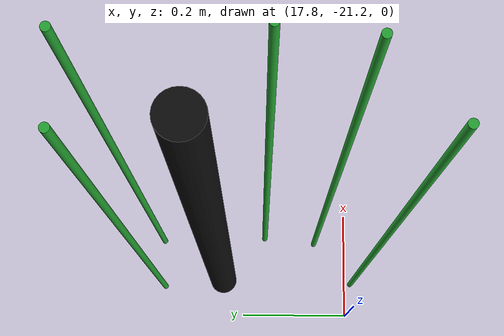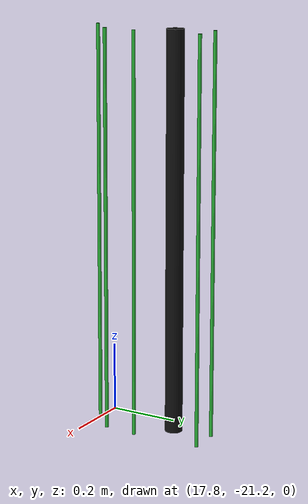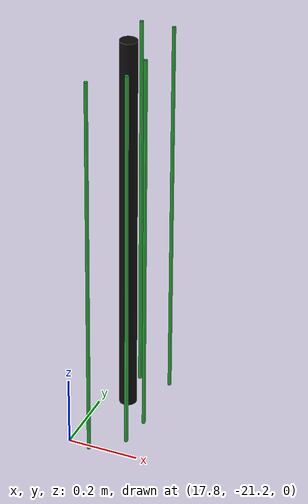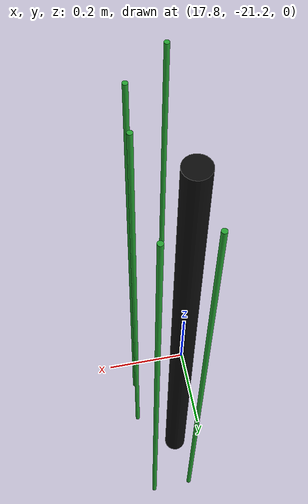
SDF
<sdf version="1.6">
 <world name="default">
  <model name="pole_30">
   <static>1</static>
   <pose>17.87 -20.96 0.575 0 -0 0</pose>
   <link name="link">
    <collision name="collision">
     <geometry><cylinder><length>1.15</length><radius>0.025</radius></cylinder></geometry>
    </collision>
    <visual name="visual">
     <geometry><cylinder><length>1.15</length><radius>0.025</radius></cylinder></geometry>
     <material>
      <script><uri>file://media/materials/scripts/gazebo.material</uri><name>Gazebo/Chrome</name></script>
      <shader type="vertex"><normal_map>__default__</normal_map></shader>
      <emissive>0.1 0.1 0.1 1</emissive>
      <specular>0.01 0.01 0.01 1</specular>
      <ambient>0.5 0.5 0.5 1</ambient>
      <diffuse>0.05 0.05 0.05 1</diffuse>
     </material>
    </visual>
   </link>
  </model>
  <model name="pole_27_clone_clone_204">
   <link name="link">
    <inertial>
     <mass>1</mass>
     <inertia><ixx>1</ixx><ixy>0</ixy><ixz>0</ixz><iyy>1</iyy><iyz>0</iyz><izz>1</izz></inertia>
    </inertial>
    <visual name="visual">
     <geometry><cylinder><length>1.15</length><radius>0.005</radius></cylinder></geometry>
     <material>
      <script><uri>file://media/materials/scripts/gazebo.material</uri><name>Gazebo/Green</name></script>
      <shader type="vertex"><normal_map>__default__</normal_map></shader>
      <emissive>0 0.1 0 1</emissive>
      <specular>0 0.01 0 1</specular>
      <ambient>0 0.5 0 1</ambient>
      <diffuse>0 0.05 0 1</diffuse>
     </material>
    </visual>
    <collision name="collision">
     <geometry><cylinder><radius>0.005</radius><length>1.15</length></cylinder></geometry>
     <surface>
      <friction>
       <ode><mu>1</mu><mu2>1</mu2><fdir1>0 0 0</fdir1><slip1>0</slip1><slip2>0</slip2></ode>
       <torsional>
        <coefficient>1</coefficient>
        <patch_radius>0</patch_radius>
        <surface_radius>0</surface_radius>
        <use_patch_radius>1</use_patch_radius>
        <ode><slip>0</slip></ode>
       </torsional>
      </friction>
      <bounce><restitution_coefficient>0</restitution_coefficient><threshold>1e+06</threshold></bounce>
      <contact>
       <collide_without_contact>0</collide_without_contact>
       <collide_without_contact_bitmask>1</collide_without_contact_bitmask>
       <collide_bitmask>1</collide_bitmask>
       <ode>
        <soft_cfm>0</soft_cfm>
        <soft_erp>0.2</soft_erp>
        <kp>1e+13</kp>
        <kd>1</kd>
        <max_vel>0.01</max_vel>
        <min_depth>0</min_depth>
       </ode>
       <bullet>
        <split_impulse>1</split_impulse>
        <split_impulse_penetration_threshold>-0.01</split_impulse_penetration_threshold>
        <soft_cfm>0</soft_cfm>
        <soft_erp>0.2</soft_erp>
        <kp>1e+13</kp>
        <kd>1</kd>
       </bullet>
      </contact>
     </surface>
    </collision>
   </link>
   <static>1</static>
   <pose>17.9544 -21.0415 0.575 0 -0 0</pose>
  </model>
  <model name="pole_27_clone_clone_206">
   <link name="link">
    <inertial>
     <mass>1</mass>
     <inertia><ixx>1</ixx><ixy>0</ixy><ixz>0</ixz><iyy>1</iyy><iyz>0</iyz><izz>1</izz></inertia>
    </inertial>
    <visual name="visual">
     <geometry><cylinder><length>1.15</length><radius>0.005</radius></cylinder></geometry>
     <material>
      <script><uri>file://media/materials/scripts/gazebo.material</uri><name>Gazebo/Green</name></script>
      <shader type="vertex"><normal_map>__default__</normal_map></shader>
      <emissive>0 0.1 0 1</emissive>
      <specular>0 0.01 0 1</specular>
      <ambient>0 0.5 0 1</ambient>
      <diffuse>0 0.05 0 1</diffuse>
     </material>
    </visual>
    <collision name="collision">
     <geometry><cylinder><radius>0.005</radius><length>1.15</length></cylinder></geometry>
     <surface>
      <friction>
       <ode><mu>1</mu><mu2>1</mu2><fdir1>0 0 0</fdir1><slip1>0</slip1><slip2>0</slip2></ode>
       <torsional>
        <coefficient>1</coefficient>
        <patch_radius>0</patch_radius>
        <surface_radius>0</surface_radius>
        <use_patch_radius>1</use_patch_radius>
        <ode><slip>0</slip></ode>
       </torsional>
      </friction>
      <bounce><restitution_coefficient>0</restitution_coefficient><threshold>1e+06</threshold></bounce>
      <contact>
       <collide_without_contact>0</collide_without_contact>
       <collide_without_contact_bitmask>1</collide_without_contact_bitmask>
       <collide_bitmask>1</collide_bitmask>
       <ode>
        <soft_cfm>0</soft_cfm>
        <soft_erp>0.2</soft_erp>
        <kp>1e+13</kp>
        <kd>1</kd>
        <max_vel>0.01</max_vel>
        <min_depth>0</min_depth>
       </ode>
       <bullet>
        <split_impulse>1</split_impulse>
        <split_impulse_penetration_threshold>-0.01</split_impulse_penetration_threshold>
        <soft_cfm>0</soft_cfm>
        <soft_erp>0.2</soft_erp>
        <kp>1e+13</kp>
        <kd>1</kd>
       </bullet>
      </contact>
     </surface>
    </collision>
   </link>
   <static>1</static>
   <pose>17.944 -21.1392 0.575 0 -0 0</pose>
  </model>
  <model name="pole_27_clone_clone_208">
   <link name="link">
    <inertial>
     <mass>1</mass>
     <inertia><ixx>1</ixx><ixy>0</ixy><ixz>0</ixz><iyy>1</iyy><iyz>0</iyz><izz>1</izz></inertia>
    </inertial>
    <visual name="visual">
     <geometry><cylinder><length>1.15</length><radius>0.005</radius></cylinder></geometry>
     <material>
      <script><uri>file://media/materials/scripts/gazebo.material</uri><name>Gazebo/Green</name></script>
      <shader type="vertex"><normal_map>__default__</normal_map></shader>
      <emissive>0 0.1 0 1</emissive>
      <specular>0 0.01 0 1</specular>
      <ambient>0 0.5 0 1</ambient>
      <diffuse>0 0.05 0 1</diffuse>
     </material>
    </visual>
    <collision name="collision">
     <geometry><cylinder><radius>0.005</radius><length>1.15</length></cylinder></geometry>
     <surface>
      <friction>
       <ode><mu>1</mu><mu2>1</mu2><fdir1>0 0 0</fdir1><slip1>0</slip1><slip2>0</slip2></ode>
       <torsional>
        <coefficient>1</coefficient>
        <patch_radius>0</patch_radius>
        <surface_radius>0</surface_radius>
        <use_patch_radius>1</use_patch_radius>
        <ode><slip>0</slip></ode>
       </torsional>
      </friction>
      <bounce><restitution_coefficient>0</restitution_coefficient><threshold>1e+06</threshold></bounce>
      <contact>
       <collide_without_contact>0</collide_without_contact>
       <collide_without_contact_bitmask>1</collide_without_contact_bitmask>
       <collide_bitmask>1</collide_bitmask>
       <ode>
        <soft_cfm>0</soft_cfm>
        <soft_erp>0.2</soft_erp>
        <kp>1e+13</kp>
        <kd>1</kd>
        <max_vel>0.01</max_vel>
        <min_depth>0</min_depth>
       </ode>
       <bullet>
        <split_impulse>1</split_impulse>
        <split_impulse_penetration_threshold>-0.01</split_impulse_penetration_threshold>
        <soft_cfm>0</soft_cfm>
        <soft_erp>0.2</soft_erp>
        <kp>1e+13</kp>
        <kd>1</kd>
       </bullet>
      </contact>
     </surface>
    </collision>
   </link>
   <static>1</static>
   <pose>17.9482 -20.8418 0.575 0 -0 0</pose>
  </model>
  <model name="pole_27_clone_clone_210">
   <link name="link">
    <inertial>
     <mass>1</mass>
     <inertia><ixx>1</ixx><ixy>0</ixy><ixz>0</ixz><iyy>1</iyy><iyz>0</iyz><izz>1</izz></inertia>
    </inertial>
    <visual name="visual">
     <geometry><cylinder><length>1.15</length><radius>0.005</radius></cylinder></geometry>
     <material>
      <script><uri>file://media/materials/scripts/gazebo.material</uri><name>Gazebo/Green</name></script>
      <shader type="vertex"><normal_map>__default__</normal_map></shader>
      <emissive>0 0.1 0 1</emissive>
      <specular>0 0.01 0 1</specular>
      <ambient>0 0.5 0 1</ambient>
      <diffuse>0 0.05 0 1</diffuse>
     </material>
    </visual>
    <collision name="collision">
     <geometry><cylinder><radius>0.005</radius><length>1.15</length></cylinder></geometry>
     <surface>
      <friction>
       <ode><mu>1</mu><mu2>1</mu2><fdir1>0 0 0</fdir1><slip1>0</slip1><slip2>0</slip2></ode>
       <torsional>
        <coefficient>1</coefficient>
        <patch_radius>0</patch_radius>
        <surface_radius>0</surface_radius>
        <use_patch_radius>1</use_patch_radius>
        <ode><slip>0</slip></ode>
       </torsional>
      </friction>
      <bounce><restitution_coefficient>0</restitution_coefficient><threshold>1e+06</threshold></bounce>
      <contact>
       <collide_without_contact>0</collide_without_contact>
       <collide_without_contact_bitmask>1</collide_without_contact_bitmask>
       <collide_bitmask>1</collide_bitmask>
       <ode>
        <soft_cfm>0</soft_cfm>
        <soft_erp>0.2</soft_erp>
        <kp>1e+13</kp>
        <kd>1</kd>
        <max_vel>0.01</max_vel>
        <min_depth>0</min_depth>
       </ode>
       <bullet>
        <split_impulse>1</split_impulse>
        <split_impulse_penetration_threshold>-0.01</split_impulse_penetration_threshold>
        <soft_cfm>0</soft_cfm>
        <soft_erp>0.2</soft_erp>
        <kp>1e+13</kp>
        <kd>1</kd>
       </bullet>
      </contact>
     </surface>
    </collision>
   </link>
   <static>1</static>
   <pose>17.8572 -20.8451 0.575 0 -0 0</pose>
  </model>
  <model name="pole_27_clone_clone_211">
   <link name="link">
    <inertial>
     <mass>1</mass>
     <inertia><ixx>1</ixx><ixy>0</ixy><ixz>0</ixz><iyy>1</iyy><iyz>0</iyz><izz>1</izz></inertia>
    </inertial>
    <visual name="visual">
     <geometry><cylinder><length>1.15</length><radius>0.005</radius></cylinder></geometry>
     <material>
      <script><uri>file://media/materials/scripts/gazebo.material</uri><name>Gazebo/Green</name></script>
      <shader type="vertex"><normal_map>__default__</normal_map></shader>
      <emissive>0 0.1 0 1</emissive>
      <specular>0 0.01 0 1</specular>
      <ambient>0 0.5 0 1</ambient>
      <diffuse>0 0.05 0 1</diffuse>
     </material>
    </visual>
    <collision name="collision">
     <geometry><cylinder><radius>0.005</radius><length>1.15</length></cylinder></geometry>
     <surface>
      <friction>
       <ode><mu>1</mu><mu2>1</mu2><fdir1>0 0 0</fdir1><slip1>0</slip1><slip2>0</slip2></ode>
       <torsional>
        <coefficient>1</coefficient>
        <patch_radius>0</patch_radius>
        <surface_radius>0</surface_radius>
        <use_patch_radius>1</use_patch_radius>
        <ode><slip>0</slip></ode>
       </torsional>
      </friction>
      <bounce><restitution_coefficient>0</restitution_coefficient><threshold>1e+06</threshold></bounce>
      <contact>
       <collide_without_contact>0</collide_without_contact>
       <collide_without_contact_bitmask>1</collide_without_contact_bitmask>
       <collide_bitmask>1</collide_bitmask>
       <ode>
        <soft_cfm>0</soft_cfm>
        <soft_erp>0.2</soft_erp>
        <kp>1e+13</kp>
        <kd>1</kd>
        <max_vel>0.01</max_vel>
        <min_depth>0</min_depth>
       </ode>
       <bullet>
        <split_impulse>1</split_impulse>
        <split_impulse_penetration_threshold>-0.01</split_impulse_penetration_threshold>
        <soft_cfm>0</soft_cfm>
        <soft_erp>0.2</soft_erp>
        <kp>1e+13</kp>
        <kd>1</kd>
       </bullet>
      </contact>
     </surface>
    </collision>
   </link>
   <static>1</static>
   <pose>17.8634 -21.2117 0.575 0 -0 0</pose>
  </model>
 </world>
</sdf>
